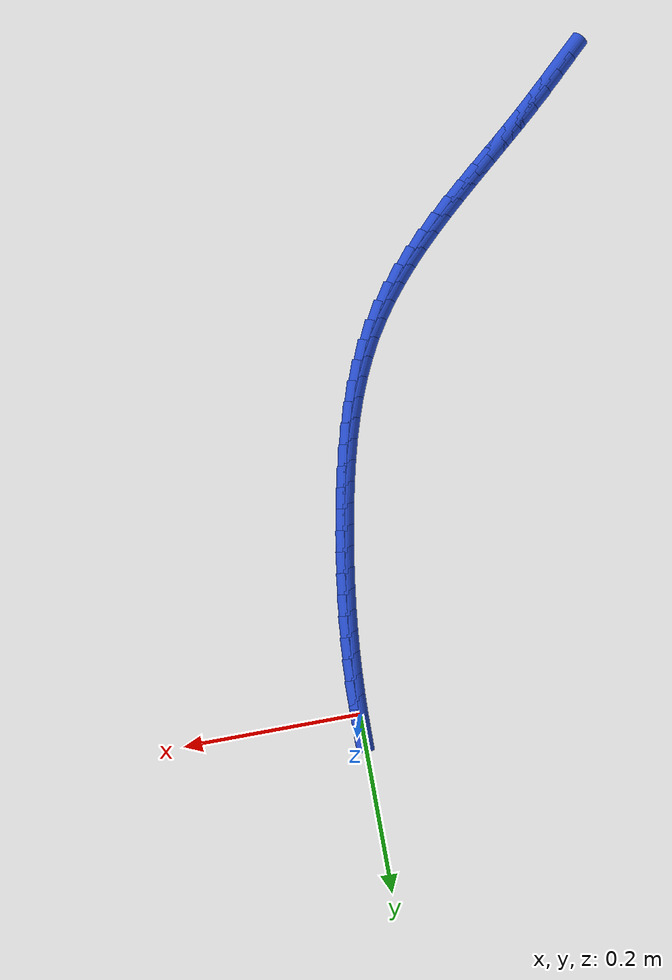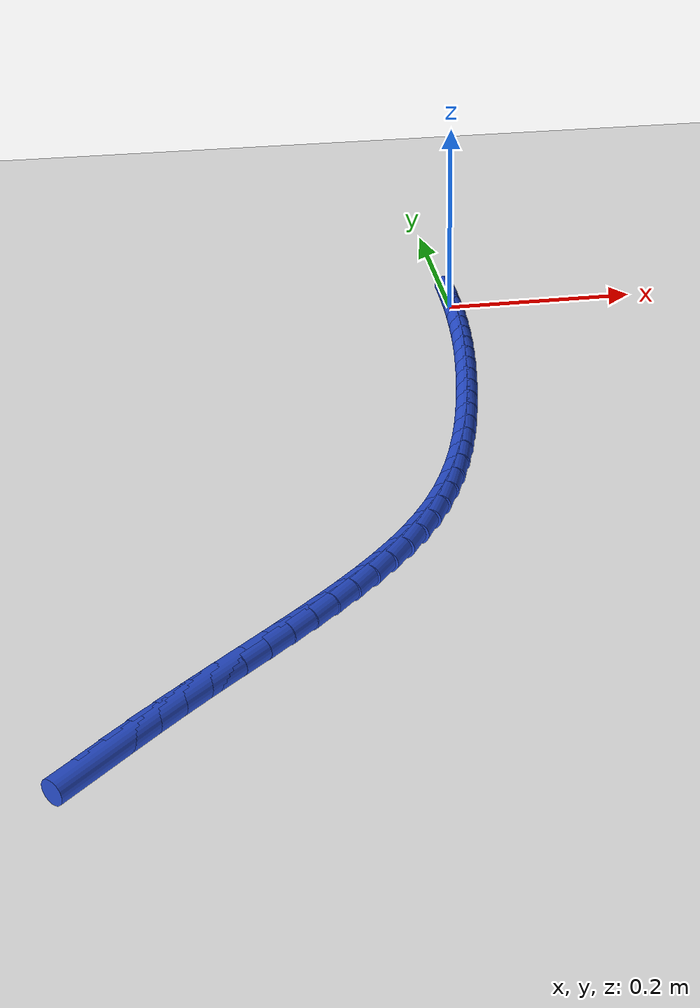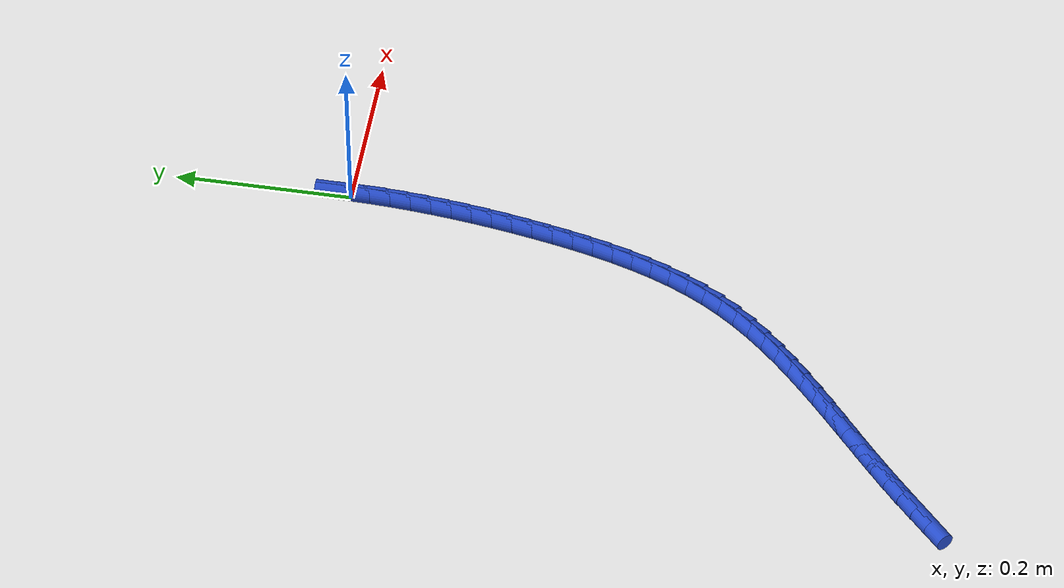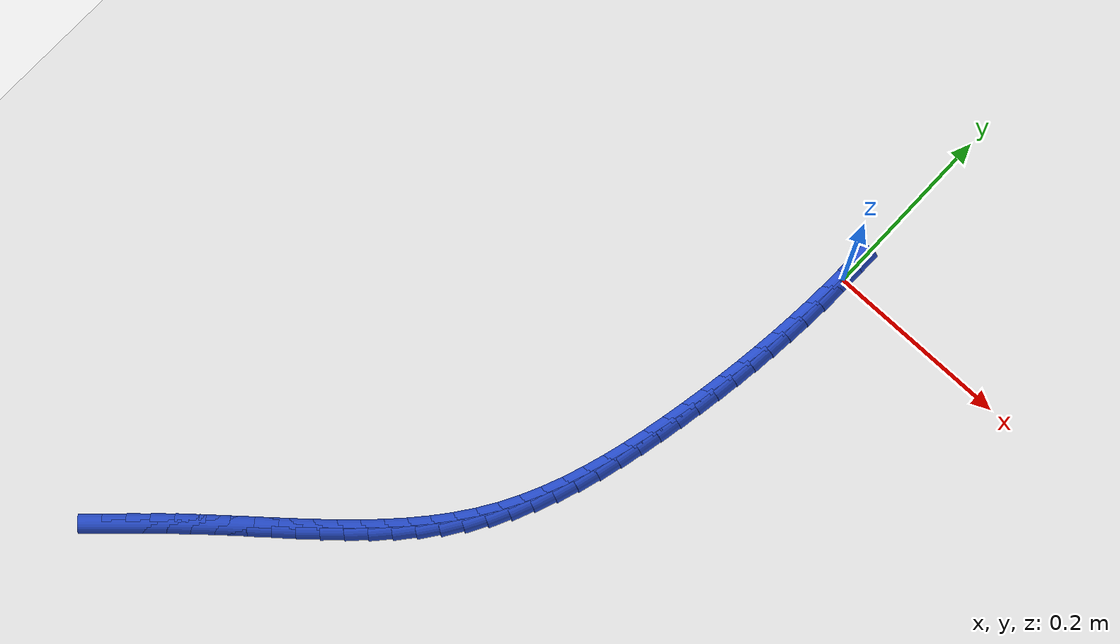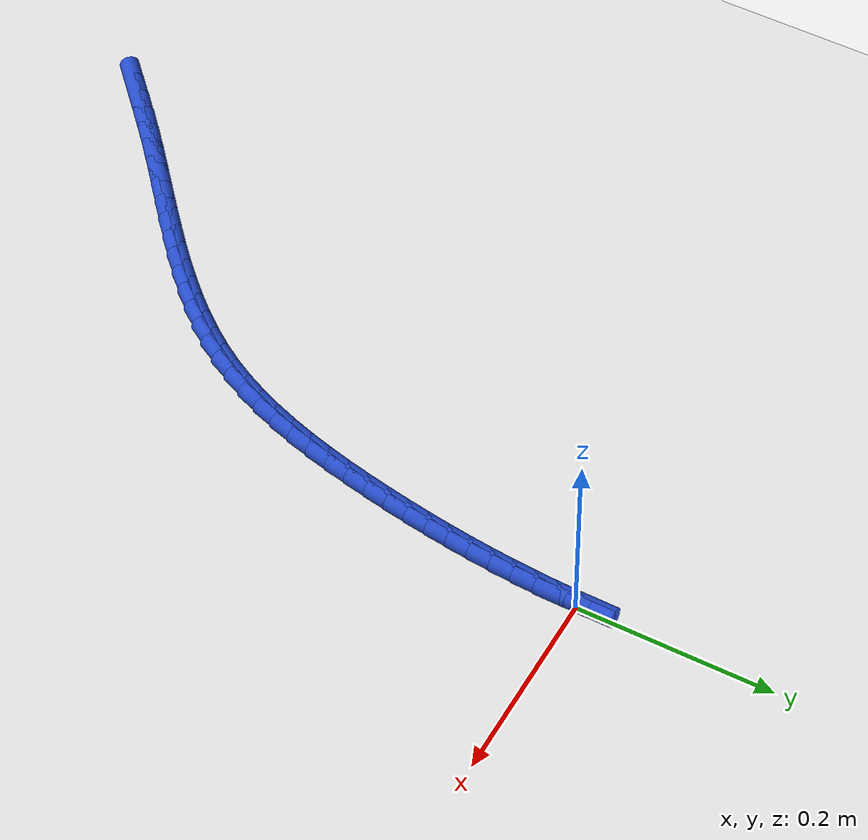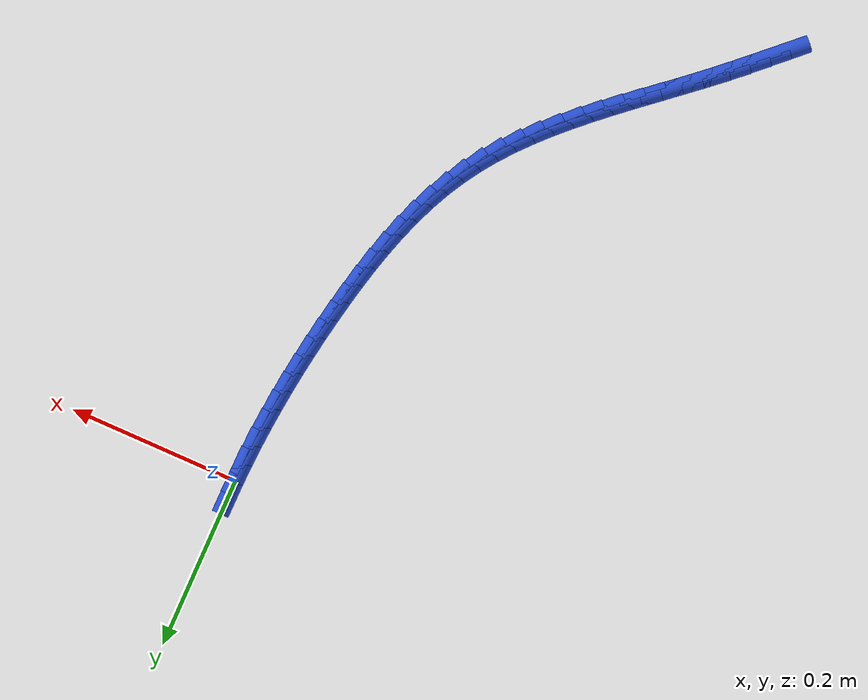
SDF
<sdf version="1.6">
 <world name="default">
  <model name="ground_plane">
   <static>1</static>
   <link name="link">
    <collision name="collision">
     <geometry><plane><normal>0 0 1</normal><size>100 100</size></plane></geometry>
     <surface><friction><ode><mu>100</mu><mu2>50</mu2></ode></friction></surface>
    </collision>
    <visual name="visual">
     <cast_shadows>0</cast_shadows>
     <geometry><plane><normal>0 0 1</normal><size>100 100</size></plane></geometry>
     <material>
      <script><uri>file://media/materials/scripts/gazebo.material</uri><name>Gazebo/WhiteGlow</name></script>
     </material>
    </visual>
   </link>
  </model>
  <model name="line">
   <link name="link_0">
    <pose>-9.974659986866641e-18 -9.71445146547012e-17 0.01 0 1.57 1.5621484069897522</pose>
    <collision name="collision">
     <geometry><cylinder><radius>0.01</radius><length>0.08</length></cylinder></geometry>
    </collision>
    <visual name="visual">
     <material>
      <script><name>Gazebo/Blue</name><uri>file://media/materials/scripts/gazebo.material</uri></script>
     </material>
     <geometry><cylinder><radius>0.01</radius><length>0.08</length></cylinder></geometry>
    </visual>
   </link>
   <link name="link_256">
    <pose>-0.362279766985254 -0.6867475439626691 0.01 0 1.57 0.7509172217683667</pose>
    <collision name="collision">
     <geometry><cylinder><radius>0.01</radius><length>0.08</length></cylinder></geometry>
    </collision>
    <visual name="visual">
     <material>
      <script><name>Gazebo/Blue</name><uri>file://media/materials/scripts/gazebo.material</uri></script>
     </material>
     <geometry><cylinder><radius>0.01</radius><length>0.08</length></cylinder></geometry>
    </visual>
   </link>
   <link name="link_257">
    <pose>-0.34469232540100303 -0.670332988131846 0.01 0 1.57 0.7460907155859243</pose>
    <collision name="collision">
     <geometry><cylinder><radius>0.01</radius><length>0.08</length></cylinder></geometry>
    </collision>
    <visual name="visual">
     <material>
      <script><name>Gazebo/Blue</name><uri>file://media/materials/scripts/gazebo.material</uri></script>
     </material>
     <geometry><cylinder><radius>0.01</radius><length>0.08</length></cylinder></geometry>
    </visual>
   </link>
   <link name="link_258">
    <pose>-0.3269639075315187 -0.6539462413808209 0.01 0 1.57 0.7345149819421125</pose>
    <collision name="collision">
     <geometry><cylinder><radius>0.01</radius><length>0.08</length></cylinder></geometry>
    </collision>
    <visual name="visual">
     <material>
      <script><name>Gazebo/Blue</name><uri>file://media/materials/scripts/gazebo.material</uri></script>
     </material>
     <geometry><cylinder><radius>0.01</radius><length>0.08</length></cylinder></geometry>
    </visual>
   </link>
   <link name="link_259">
    <pose>-0.30898517633489797 -0.6377099818362546 0.01 0 1.57 0.7192940141806996</pose>
    <collision name="collision">
     <geometry><cylinder><radius>0.01</radius><length>0.08</length></cylinder></geometry>
    </collision>
    <visual name="visual">
     <material>
      <script><name>Gazebo/Blue</name><uri>file://media/materials/scripts/gazebo.material</uri></script>
     </material>
     <geometry><cylinder><radius>0.01</radius><length>0.08</length></cylinder></geometry>
    </visual>
   </link>
   <link name="link_260">
    <pose>-0.29070219924173485 -0.6216973919956442 0.01 0 1.57 0.7087720631488595</pose>
    <collision name="collision">
     <geometry><cylinder><radius>0.01</radius><length>0.08</length></cylinder></geometry>
    </collision>
    <visual name="visual">
     <material>
      <script><name>Gazebo/Blue</name><uri>file://media/materials/scripts/gazebo.material</uri></script>
     </material>
     <geometry><cylinder><radius>0.01</radius><length>0.08</length></cylinder></geometry>
    </visual>
   </link>
   <link name="link_261">
    <pose>-0.27221361327199983 -0.6058453561935915 0.01 0 1.57 0.70429903176237</pose>
    <collision name="collision">
     <geometry><cylinder><radius>0.01</radius><length>0.08</length></cylinder></geometry>
    </collision>
    <visual name="visual">
     <material>
      <script><name>Gazebo/Blue</name><uri>file://media/materials/scripts/gazebo.material</uri></script>
     </material>
     <geometry><cylinder><radius>0.01</radius><length>0.08</length></cylinder></geometry>
    </visual>
   </link>
   <link name="link_262">
    <pose>-0.25364409119732095 -0.5900674997054393 0.01 0 1.57 0.7058442326772025</pose>
    <collision name="collision">
     <geometry><cylinder><radius>0.01</radius><length>0.08</length></cylinder></geometry>
    </collision>
    <visual name="visual">
     <material>
      <script><name>Gazebo/Blue</name><uri>file://media/materials/scripts/gazebo.material</uri></script>
     </material>
     <geometry><cylinder><radius>0.01</radius><length>0.08</length></cylinder></geometry>
    </visual>
   </link>
   <link name="link_263">
    <pose>-0.23511830578932608 -0.5742774478065302 0.01 0 1.57 0.713433822318134</pose>
    <collision name="collision">
     <geometry><cylinder><radius>0.01</radius><length>0.08</length></cylinder></geometry>
    </collision>
    <visual name="visual">
     <material>
      <script><name>Gazebo/Blue</name><uri>file://media/materials/scripts/gazebo.material</uri></script>
     </material>
     <geometry><cylinder><radius>0.01</radius><length>0.08</length></cylinder></geometry>
    </visual>
   </link>
   <link name="link_264">
    <pose>-0.21676092981964326 -0.5583888257722066 0.01 0 1.57 0.7271497878446946</pose>
    <collision name="collision">
     <geometry><cylinder><radius>0.01</radius><length>0.08</length></cylinder></geometry>
    </collision>
    <visual name="visual">
     <material>
      <script><name>Gazebo/Blue</name><uri>file://media/materials/scripts/gazebo.material</uri></script>
     </material>
     <geometry><cylinder><radius>0.01</radius><length>0.08</length></cylinder></geometry>
    </visual>
   </link>
   <link name="link_265">
    <pose>-0.19869663605990112 -0.5423152588778123 0.01 0 1.57 0.7471233160629546</pose>
    <collision name="collision">
     <geometry><cylinder><radius>0.01</radius><length>0.08</length></cylinder></geometry>
    </collision>
    <visual name="visual">
     <material>
      <script><name>Gazebo/Blue</name><uri>file://media/materials/scripts/gazebo.material</uri></script>
     </material>
     <geometry><cylinder><radius>0.01</radius><length>0.08</length></cylinder></geometry>
    </visual>
   </link>
   <link name="link_266">
    <pose>-0.18105009728172639 -0.5259703723986885 0.01 0 1.57 0.7735214805458988</pose>
    <collision name="collision">
     <geometry><cylinder><radius>0.01</radius><length>0.08</length></cylinder></geometry>
    </collision>
    <visual name="visual">
     <material>
      <script><name>Gazebo/Blue</name><uri>file://media/materials/scripts/gazebo.material</uri></script>
     </material>
     <geometry><cylinder><radius>0.01</radius><length>0.08</length></cylinder></geometry>
    </visual>
   </link>
   <link name="link_267">
    <pose>-0.1639459862567477 -0.5092677916101784 0.01 0 1.57 0.8065255130195554</pose>
    <collision name="collision">
     <geometry><cylinder><radius>0.01</radius><length>0.08</length></cylinder></geometry>
    </collision>
    <visual name="visual">
     <material>
      <script><name>Gazebo/Blue</name><uri>file://media/materials/scripts/gazebo.material</uri></script>
     </material>
     <geometry><cylinder><radius>0.01</radius><length>0.08</length></cylinder></geometry>
    </visual>
   </link>
   <link name="link_268">
    <pose>-0.147508975756593 -0.4921211417876248 0.01 0 1.57 0.8462985791560932</pose>
    <collision name="collision">
     <geometry><cylinder><radius>0.01</radius><length>0.08</length></cylinder></geometry>
    </collision>
    <visual name="visual">
     <material>
      <script><name>Gazebo/Blue</name><uri>file://media/materials/scripts/gazebo.material</uri></script>
     </material>
     <geometry><cylinder><radius>0.01</radius><length>0.08</length></cylinder></geometry>
    </visual>
   </link>
   <link name="link_269">
    <pose>-0.1318637385528903 -0.4744440482063703 0.01 0 1.57 0.8929413322212548</pose>
    <collision name="collision">
     <geometry><cylinder><radius>0.01</radius><length>0.08</length></cylinder></geometry>
    </collision>
    <visual name="visual">
     <material>
      <script><name>Gazebo/Blue</name><uri>file://media/materials/scripts/gazebo.material</uri></script>
     </material>
     <geometry><cylinder><radius>0.01</radius><length>0.08</length></cylinder></geometry>
    </visual>
   </link>
   <link name="link_270">
    <pose>-0.11713494741726749 -0.4561501361417573 0.01 0 1.57 0.9464351197316586</pose>
    <collision name="collision">
     <geometry><cylinder><radius>0.01</radius><length>0.08</length></cylinder></geometry>
    </collision>
    <visual name="visual">
     <material>
      <script><name>Gazebo/Blue</name><uri>file://media/materials/scripts/gazebo.material</uri></script>
     </material>
     <geometry><cylinder><radius>0.01</radius><length>0.08</length></cylinder></geometry>
    </visual>
   </link>
   <link name="link_271">
    <pose>-0.10344727512135268 -0.43715303086912904 0.01 0 1.57 1.0065721032146724</pose>
    <collision name="collision">
     <geometry><cylinder><radius>0.01</radius><length>0.08</length></cylinder></geometry>
    </collision>
    <visual name="visual">
     <material>
      <script><name>Gazebo/Blue</name><uri>file://media/materials/scripts/gazebo.material</uri></script>
     </material>
     <geometry><cylinder><radius>0.01</radius><length>0.08</length></cylinder></geometry>
    </visual>
   </link>
   <link name="link_272">
    <pose>-0.09092532176277321 -0.4173664195517143 0.01 0 1.57 1.0700261005474154</pose>
    <collision name="collision">
     <geometry><cylinder><radius>0.01</radius><length>0.08</length></cylinder></geometry>
    </collision>
    <visual name="visual">
     <material>
      <script><name>Gazebo/Blue</name><uri>file://media/materials/scripts/gazebo.material</uri></script>
     </material>
     <geometry><cylinder><radius>0.01</radius><length>0.08</length></cylinder></geometry>
    </visual>
   </link>
   <link name="link_273">
    <pose>-0.07964118264480424 -0.3967487015018611 0.01 0 1.57 1.128497409801947</pose>
    <collision name="collision">
     <geometry><cylinder><radius>0.01</radius><length>0.08</length></cylinder></geometry>
    </collision>
    <visual name="visual">
     <material>
      <script><name>Gazebo/Blue</name><uri>file://media/materials/scripts/gazebo.material</uri></script>
     </material>
     <geometry><cylinder><radius>0.01</radius><length>0.08</length></cylinder></geometry>
    </visual>
   </link>
   <link name="link_274">
    <pose>-0.06952196349446985 -0.37538174657654216 0.01 0 1.57 1.1806649879154425</pose>
    <collision name="collision">
     <geometry><cylinder><radius>0.01</radius><length>0.08</length></cylinder></geometry>
    </collision>
    <visual name="visual">
     <material>
      <script><name>Gazebo/Blue</name><uri>file://media/materials/scripts/gazebo.material</uri></script>
     </material>
     <geometry><cylinder><radius>0.01</radius><length>0.08</length></cylinder></geometry>
    </visual>
   </link>
   <link name="link_275">
    <pose>-0.06046995404135725 -0.35336855749481627 0.01 0 1.57 1.226725123364914</pose>
    <collision name="collision">
     <geometry><cylinder><radius>0.01</radius><length>0.08</length></cylinder></geometry>
    </collision>
    <visual name="visual">
     <material>
      <script><name>Gazebo/Blue</name><uri>file://media/materials/scripts/gazebo.material</uri></script>
     </material>
     <geometry><cylinder><radius>0.01</radius><length>0.08</length></cylinder></geometry>
    </visual>
   </link>
   <link name="link_276">
    <pose>-0.05238744401505375 -0.3308121369757425 0.01 0 1.57 1.2669503504503912</pose>
    <collision name="collision">
     <geometry><cylinder><radius>0.01</radius><length>0.08</length></cylinder></geometry>
    </collision>
    <visual name="visual">
     <material>
      <script><name>Gazebo/Blue</name><uri>file://media/materials/scripts/gazebo.material</uri></script>
     </material>
     <geometry><cylinder><radius>0.01</radius><length>0.08</length></cylinder></geometry>
    </visual>
   </link>
   <link name="link_277">
    <pose>-0.04517672314514659 -0.30781548773838 0.01 0 1.57 1.301640348209759</pose>
    <collision name="collision">
     <geometry><cylinder><radius>0.01</radius><length>0.08</length></cylinder></geometry>
    </collision>
    <visual name="visual">
     <material>
      <script><name>Gazebo/Blue</name><uri>file://media/materials/scripts/gazebo.material</uri></script>
     </material>
     <geometry><cylinder><radius>0.01</radius><length>0.08</length></cylinder></geometry>
    </visual>
   </link>
   <link name="link_278">
    <pose>-0.038740081161223044 -0.2844816125017876 0.01 0 1.57 1.3310859443329188</pose>
    <collision name="collision">
     <geometry><cylinder><radius>0.01</radius><length>0.08</length></cylinder></geometry>
    </collision>
    <visual name="visual">
     <material>
      <script><name>Gazebo/Blue</name><uri>file://media/materials/scripts/gazebo.material</uri></script>
     </material>
     <geometry><cylinder><radius>0.01</radius><length>0.08</length></cylinder></geometry>
    </visual>
   </link>
   <link name="link_279">
    <pose>-0.03297980779287038 -0.26091351398502444 0.01 0 1.57 1.3555437713160197</pose>
    <collision name="collision">
     <geometry><cylinder><radius>0.01</radius><length>0.08</length></cylinder></geometry>
    </collision>
    <visual name="visual">
     <material>
      <script><name>Gazebo/Blue</name><uri>file://media/materials/scripts/gazebo.material</uri></script>
     </material>
     <geometry><cylinder><radius>0.01</radius><length>0.08</length></cylinder></geometry>
    </visual>
   </link>
   <link name="link_280">
    <pose>-0.02779819276967601 -0.2372141949071502 0.01 0 1.57 1.3752187707061203</pose>
    <collision name="collision">
     <geometry><cylinder><radius>0.01</radius><length>0.08</length></cylinder></geometry>
    </collision>
    <visual name="visual">
     <material>
      <script><name>Gazebo/Blue</name><uri>file://media/materials/scripts/gazebo.material</uri></script>
     </material>
     <geometry><cylinder><radius>0.01</radius><length>0.08</length></cylinder></geometry>
    </visual>
   </link>
   <link name="link_281">
    <pose>-0.023097530328596093 -0.21348665282901708 0.01 0 1.57 1.3913402221292472</pose>
    <collision name="collision">
     <geometry><cylinder><radius>0.01</radius><length>0.08</length></cylinder></geometry>
    </collision>
    <visual name="visual">
     <material>
      <script><name>Gazebo/Blue</name><uri>file://media/materials/scripts/gazebo.material</uri></script>
     </material>
     <geometry><cylinder><radius>0.01</radius><length>0.08</length></cylinder></geometry>
    </visual>
   </link>
   <link name="link_282">
    <pose>-0.018802160017455216 -0.18980865679439377 0.01 0 1.57 1.4075612048736292</pose>
    <collision name="collision">
     <geometry><cylinder><radius>0.01</radius><length>0.08</length></cylinder></geometry>
    </collision>
    <visual name="visual">
     <material>
      <script><name>Gazebo/Blue</name><uri>file://media/materials/scripts/gazebo.material</uri></script>
     </material>
     <geometry><cylinder><radius>0.01</radius><length>0.08</length></cylinder></geometry>
    </visual>
   </link>
   <link name="link_283">
    <pose>-0.0149095632264804 -0.1661742727760517 0.01 0 1.57 1.4245959047957135</pose>
    <collision name="collision">
     <geometry><cylinder><radius>0.01</radius><length>0.08</length></cylinder></geometry>
    </collision>
    <visual name="visual">
     <material>
      <script><name>Gazebo/Blue</name><uri>file://media/materials/scripts/gazebo.material</uri></script>
     </material>
     <geometry><cylinder><radius>0.01</radius><length>0.08</length></cylinder></geometry>
    </visual>
   </link>
   <link name="link_284">
    <pose>-0.0114323703812156 -0.1425602302846631 0.01 0 1.57 1.4423978268172704</pose>
    <collision name="collision">
     <geometry><cylinder><radius>0.01</radius><length>0.08</length></cylinder></geometry>
    </collision>
    <visual name="visual">
     <material>
      <script><name>Gazebo/Blue</name><uri>file://media/materials/scripts/gazebo.material</uri></script>
     </material>
     <geometry><cylinder><radius>0.01</radius><length>0.08</length></cylinder></geometry>
    </visual>
   </link>
   <link name="link_285">
    <pose>-0.008383211907204811 -0.11894325883090015 0.01 0 1.57 1.4609131542503506</pose>
    <collision name="collision">
     <geometry><cylinder><radius>0.01</radius><length>0.08</length></cylinder></geometry>
    </collision>
    <visual name="visual">
     <material>
      <script><name>Gazebo/Blue</name><uri>file://media/materials/scripts/gazebo.material</uri></script>
     </material>
     <geometry><cylinder><radius>0.01</radius><length>0.08</length></cylinder></geometry>
    </visual>
   </link>
   <link name="link_286">
    <pose>-0.005774718229991993 -0.09530008792543518 0.01 0 1.57 1.48008109871812</pose>
    <collision name="collision">
     <geometry><cylinder><radius>0.01</radius><length>0.08</length></cylinder></geometry>
    </collision>
    <visual name="visual">
     <material>
      <script><name>Gazebo/Blue</name><uri>file://media/materials/scripts/gazebo.material</uri></script>
     </material>
     <geometry><cylinder><radius>0.01</radius><length>0.08</length></cylinder></geometry>
    </visual>
   </link>
   <link name="link_287">
    <pose>-0.003619519775121131 -0.07160744707894041 0.01 0 1.57 1.499834437312013</pose>
    <collision name="collision">
     <geometry><cylinder><radius>0.01</radius><length>0.08</length></cylinder></geometry>
    </collision>
    <visual name="visual">
     <material>
      <script><name>Gazebo/Blue</name><uri>file://media/materials/scripts/gazebo.material</uri></script>
     </material>
     <geometry><cylinder><radius>0.01</radius><length>0.08</length></cylinder></geometry>
    </visual>
   </link>
   <link name="link_288">
    <pose>-0.001930246968136195 -0.04784206580208813 0.01 0 1.57 1.5201002346589152</pose>
    <collision name="collision">
     <geometry><cylinder><radius>0.01</radius><length>0.08</length></cylinder></geometry>
    </collision>
    <visual name="visual">
     <material>
      <script><name>Gazebo/Blue</name><uri>file://media/materials/scripts/gazebo.material</uri></script>
     </material>
     <geometry><cylinder><radius>0.01</radius><length>0.08</length></cylinder></geometry>
    </visual>
   </link>
   <link name="link_289">
    <pose>-0.000719530234581161 -0.023980673605550572 0.01 0 1.57 1.5408007379356425</pose>
    <collision name="collision">
     <geometry><cylinder><radius>0.01</radius><length>0.08</length></cylinder></geometry>
    </collision>
    <visual name="visual">
     <material>
      <script><name>Gazebo/Blue</name><uri>file://media/materials/scripts/gazebo.material</uri></script>
     </material>
     <geometry><cylinder><radius>0.01</radius><length>0.08</length></cylinder></geometry>
    </visual>
   </link>
   <link name="link_290">
    <pose>-1.5178830414797062e-18 2.7755575615628914e-17 0.01 0 1.57 1.5618544230395879</pose>
    <collision name="collision">
     <geometry><cylinder><radius>0.01</radius><length>0.08</length></cylinder></geometry>
    </collision>
    <visual name="visual">
     <material>
      <script><name>Gazebo/Blue</name><uri>file://media/materials/scripts/gazebo.material</uri></script>
     </material>
     <geometry><cylinder><radius>0.01</radius><length>0.08</length></cylinder></geometry>
    </visual>
   </link>
  </model>
 </world>
</sdf>
